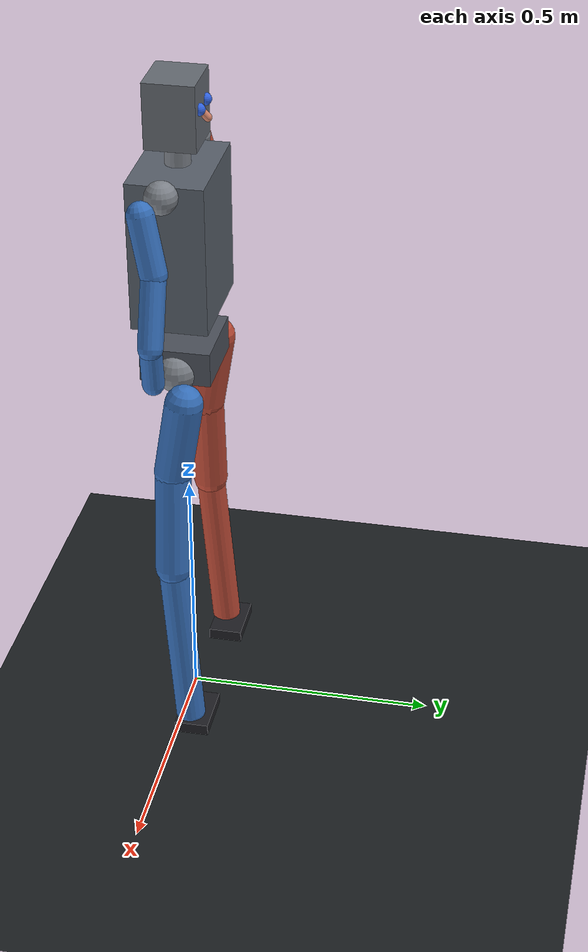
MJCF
<?xml version="1.0"?>
<mujoco model="angad_humanoid">

  <!-- ═══════════════ COMPILER ═══════════════ -->
  <compiler angle="radian" eulerseq="XYZ"/>

  <!-- ═══════════════ OPTIONS ═══════════════ -->
  <option timestep="0.002" gravity="0 0 -9.81"/>

  <!-- ═══════════════ DEFAULTS ═══════════════ -->
  <default>
    <joint damping="20.0" armature="0.1" limited="true"/>
    <geom condim="3" contype="1" conaffinity="1" friction="1.0 0.005 0.001"/>
    <position kp="1000" forcerange="-1000 1000" ctrllimited="true"/>
  </default>

  <!-- ═══════════════ VISUAL ═══════════════ -->
  <visual>
    <headlight ambient="0.25 0.25 0.28" diffuse="0.6 0.6 0.6" specular="0.3 0.3 0.3"/>
    <rgba haze="0.15 0.2 0.33 1"/>
    <global offwidth="1920" offheight="1080"/>
  </visual>

  <!-- ═══════════════ ASSETS ═══════════════ -->
  <asset>
    <texture type="2d" name="floor_tex" builtin="checker"
             rgb1="0.08 0.09 0.10" rgb2="0.14 0.15 0.16"
             width="512" height="512"/>
    <material name="floor_mat" texture="floor_tex" texrepeat="10 10"
              texuniform="true" reflectance="0.15"/>

    <!-- Robot materials -->
    <material name="pelvis_mat"  rgba="0.30 0.32 0.36 1" specular="0.6" shininess="0.4"/>
    <material name="torso_mat"   rgba="0.35 0.38 0.42 1" specular="0.6" shininess="0.4"/>
    <material name="left_mat"    rgba="0.22 0.45 0.75 1" specular="0.5" shininess="0.3"/>
    <material name="right_mat"   rgba="0.75 0.30 0.22 1" specular="0.5" shininess="0.3"/>
    <material name="joint_mat"   rgba="0.50 0.52 0.55 1" specular="0.7" shininess="0.6"/>
    <material name="foot_mat"    rgba="0.12 0.12 0.14 1" specular="0.4" shininess="0.2"/>
    <material name="head_mat"    rgba="0.40 0.42 0.45 1" specular="0.6" shininess="0.5"/>
  </asset>

  <!-- ═══════════════ WORLD ═══════════════ -->
  <worldbody>

    <!-- Ground plane -->
    <geom name="floor" type="plane" size="5 5 0.02" material="floor_mat"/>

    <!-- Lighting -->
    <light name="top" pos="0 0 4" dir="0 0 -1" directional="true"
           castshadow="true" diffuse="0.5 0.5 0.5" specular="0.2 0.2 0.2"/>
    <light name="front_right" pos="2 -2 3" dir="-0.4 0.4 -0.7"
           diffuse="0.35 0.35 0.35" specular="0.15 0.15 0.15"/>
    <light name="front_left" pos="-2 -2 3" dir="0.4 0.4 -0.7"
           diffuse="0.2 0.2 0.2"/>

    <body name="base_link" pos="0 0 0">
      <!-- Support mechanism to prevent falling over:
           Allows X, Y, Z translation and Yaw rotation, but prevents Pitch/Roll. -->
      <joint name="root_x" type="slide" axis="1 0 0" limited="false"/>
      <joint name="root_y" type="slide" axis="0 1 0" limited="false"/>
      <joint name="root_z" type="slide" axis="0 0 1" limited="false"/>
      <joint name="root_yaw" type="hinge" axis="0 0 1" limited="false"/>

      <!-- Pelvis visual (centered between hip joints) -->
      <geom name="pelvis" type="box" size="0.08 0.07 0.035"
            pos="0 0 0.82" material="pelvis_mat" mass="5.565"/>

      <!-- ══════════════════════════════════════════
           LEFT LEG
           Chain: hip → thigh_roll → thigh_yaw → knee → ankle → foot
           ══════════════════════════════════════════ -->
      <body name="hip_L_1" pos="0.06406 0 0.80394">
        <joint name="hip_pitch_l" type="hinge"
               axis="-0.939693 0 0.34202" range="-1.57 1.57" damping="8.0"/>
        <geom name="hip_l" type="sphere" size="0.042"
              material="joint_mat" mass="1.008"/>

        <body name="thigh_L_1" pos="0.07423 0.0315 -0.027037">
          <joint name="thigh_roll_l" type="hinge"
                 axis="0 1 0" range="-0.5 0.5"/>
          <geom name="thigh_l" type="capsule"
                fromto="0 0 0  0.000005 -0.026332 -0.156586"
                size="0.038" material="left_mat" mass="1.319"/>

          <body name="upper_knee_L_1" pos="0.000005 -0.026332 -0.156586">
            <joint name="thigh_yaw_l" type="hinge"
                   axis="0 0 -1" range="-0.5 0.5"/>
            <geom name="upper_knee_l" type="capsule"
                  fromto="0 0 0  0.027 -0.000135 -0.2097"
                  size="0.036" material="left_mat" mass="2.264"/>

            <body name="lower_knee_L_1" pos="0.027 -0.000135 -0.2097">
              <joint name="knee_pitch_l" type="hinge"
                     axis="1 0 0" range="-2.0 2.0" damping="8.0"/>
              <geom name="shin_l" type="capsule"
                    fromto="0 0 0  0.004026 0.025698 -0.362979"
                    size="0.030" material="left_mat" mass="1.446"/>

              <body name="ankle_L_1" pos="0.004026 0.025698 -0.362979">
                <joint name="ankle_pitch_l" type="hinge"
                       axis="1 0 0" range="-1.0 1.0"/>
                <geom name="ankle_l" type="sphere" size="0.024"
                      material="joint_mat" mass="0.108"/>

                <body name="feet_L_1" pos="-0.027965 0.038725 0.000137">
                  <joint name="ankle_roll_l" type="hinge"
                         axis="0 -1 0" range="-0.5 0.5"/>
                  <geom name="foot_l" type="box"
                        size="0.055 0.035 0.012"
                        pos="0.01 -0.03 -0.015"
                        material="foot_mat" mass="0.365"/>
                </body>
              </body>
            </body>
          </body>
        </body>
      </body>

      <!-- ══════════════════════════════════════════
           RIGHT LEG
           ══════════════════════════════════════════ -->
      <body name="hip_R_1" pos="-0.06406 0 0.80394">
        <joint name="hip_pitch_r" type="hinge"
               axis="0.939693 0 0.34202" range="-1.57 1.57" damping="8.0"/>
        <geom name="hip_r" type="sphere" size="0.042"
              material="joint_mat" mass="1.008"/>

        <body name="thigh_R_1" pos="-0.074203 0.0315 -0.02711">
          <joint name="thigh_roll_r" type="hinge"
                 axis="0 1 0" range="-0.5 0.5"/>
          <geom name="thigh_r" type="capsule"
                fromto="0 0 0  -0.003714 -0.026692 -0.156481"
                size="0.038" material="right_mat" mass="1.319"/>

          <body name="upper_knee_R_1" pos="-0.003714 -0.026692 -0.156481">
            <joint name="thigh_yaw_r" type="hinge"
                   axis="0 0 -1" range="-0.5 0.5"/>
            <geom name="upper_knee_r" type="capsule"
                  fromto="0 0 0  -0.03029 -0.003264 -0.209036"
                  size="0.036" material="right_mat" mass="2.264"/>

            <body name="lower_knee_R_1" pos="-0.03029 -0.003264 -0.209036">
              <joint name="knee_pitch_r" type="hinge"
                     axis="1 0 0" range="-2.0 2.0" damping="8.0"/>
              <geom name="shin_r" type="capsule"
                    fromto="0 0 0  -0.015197 0.0239 -0.362807"
                    size="0.030" material="right_mat" mass="1.446"/>

              <body name="ankle_R_1" pos="-0.015197 0.0239 -0.362807">
                <joint name="ankle_pitch_r" type="hinge"
                       axis="1 0 0" range="-1.0 1.0"/>
                <geom name="ankle_r" type="sphere" size="0.024"
                      material="joint_mat" mass="0.108"/>

                <body name="feet_R_1" pos="0.023748 0.04172 -0.000679">
                  <joint name="ankle_roll_r" type="hinge"
                         axis="0 -1 0" range="-0.5 0.5"/>
                  <geom name="foot_r" type="box"
                        size="0.055 0.035 0.012"
                        pos="-0.01 -0.03 -0.015"
                        material="foot_mat" mass="0.365"/>
                </body>
              </body>
            </body>
          </body>
        </body>
      </body>

      <!-- ══════════════════════════════════════════
           TORSO (3-DOF: pitch → roll → yaw)
           ══════════════════════════════════════════ -->
      <body name="torso_pitch_link" pos="0 0 0.883471">
        <joint name="torso_pitch" type="hinge"
               axis="0 1 0" range="-1.57 1.57" damping="6.0"/>
        <inertial pos="0 0 0" mass="0.01"
                  diaginertia="0.0001 0.0001 0.0001"/>

        <body name="torso_roll_link" pos="0 0 0">
          <joint name="torso_roll" type="hinge"
                 axis="1 0 0" range="-1.57 1.57" damping="6.0"/>
          <inertial pos="0 0 0" mass="0.01"
                    diaginertia="0.0001 0.0001 0.0001"/>

          <body name="Torso_1" pos="0 0 0">
            <joint name="torso_yaw" type="hinge"
                   axis="0 0 1" range="-1.57 1.57" damping="6.0"/>
            <!-- Chest -->
            <geom name="chest" type="box" size="0.11 0.075 0.15"
                  pos="0 0 0.18" material="torso_mat" mass="4.0"/>
            <!-- Neck + Head (2-DOF: pitch → yaw) -->
            <geom name="neck" type="capsule" fromto="0 0 0.33 0 0 0.38"
                  size="0.025" material="joint_mat" mass="0.2"/>

            <body name="head_link" pos="0 0 0.38">
              <inertial pos="0 0 0.03" mass="0.1"
                        diaginertia="0.0001 0.0001 0.0001"/>
              <joint name="neck_pitch" type="hinge"
                     axis="0 1 0" range="-0.7 0.7" damping="2.0"/>

              <body name="head_yaw_link" pos="0 0 0">
                <joint name="neck_yaw" type="hinge"
                       axis="0 0 1" range="-1.2 1.2" damping="2.0"/>
                <!-- Head: box shape so rotation is visible -->
                <geom name="head" type="box" size="0.055 0.05 0.065"
                      pos="0 0 0.06" material="head_mat" mass="0.329"
                      contype="0" conaffinity="0"/>
                <!-- Eyes (blue spheres — show yaw direction) -->
                <geom name="eye_l" type="sphere" size="0.012"
                      pos="0.025 0.05 0.07" rgba="0.2 0.4 0.9 1"
                      contype="0" conaffinity="0" mass="0.001"/>
                <geom name="eye_r" type="sphere" size="0.012"
                      pos="-0.025 0.05 0.07" rgba="0.2 0.4 0.9 1"
                      contype="0" conaffinity="0" mass="0.001"/>
                <!-- Nose (small capsule — shows pitch direction) -->
                <geom name="nose" type="capsule" size="0.008"
                      fromto="0 0.05 0.055  0 0.06 0.045"
                      rgba="0.8 0.5 0.4 1"
                      contype="0" conaffinity="0" mass="0.001"/>
              </body>
            </body>

            <!-- ════════ LEFT ARM ════════ -->
            <body name="shoulder_pitch_L_1" pos="0.142972 0.003567 0.324503">
              <joint name="shoulder_pitch_l" type="hinge"
                     axis="0.999681 0.025268 0" range="-3.14159 3.14159"
                     damping="3.0"/>
              <geom name="shoulder_l" type="sphere" size="0.032"
                    material="joint_mat" mass="0.929"/>

              <body name="shoulder_roll_L_1" pos="0.075975 -0.017836 0">
                <joint name="shoulder_roll_l" type="hinge"
                       axis="0.025268 -0.999681 0" range="0 2.792527"
                       damping="2.0"/>
                <geom name="upper_arm_l" type="capsule"
                      fromto="0 0 0  0.018194 0.024718 -0.106693"
                      size="0.026" material="left_mat" mass="0.64"/>

                <body name="bicep_L_1" pos="0.018194 0.024718 -0.106693">
                  <joint name="elbow_yaw_l" type="hinge"
                         axis="0.173593 0.004388 -0.984808"
                         range="-3.14159 3.14159" damping="1.5"/>
                  <geom name="bicep_l" type="capsule"
                        fromto="0 0 0  0.04735 0.001308 -0.124669"
                        size="0.024" material="left_mat" mass="0.648"/>

                  <body name="wrist_L_1" pos="0.04735 0.001308 -0.124669">
                    <joint name="elbow_pitch_l" type="hinge"
                           axis="-0.984371 -0.029347 -0.173646"
                           range="-1.57 1.57" damping="1.5"/>
                    <geom name="forearm_l" type="capsule"
                          fromto="0 0 0  -0.01 0 -0.08"
                          size="0.021" material="left_mat" mass="0.37"/>
                  </body>
                </body>
              </body>
            </body>

            <!-- ════════ RIGHT ARM ════════ -->
            <body name="shoulder_pitch_R_1" pos="-0.142971 -0.003614 0.324503">
              <joint name="shoulder_pitch_r" type="hinge"
                     axis="0.999681 0.025268 0" range="-3.14159 3.14159"
                     damping="3.0"/>
              <geom name="shoulder_r" type="sphere" size="0.032"
                    material="joint_mat" mass="0.929"/>

              <body name="shoulder_roll_R_1" pos="-0.074977 -0.021651 0">
                <joint name="shoulder_roll_r" type="hinge"
                       axis="0.025268 -0.999681 0" range="-2.879793 0.174533"
                       damping="2.0"/>
                <geom name="upper_arm_r" type="capsule"
                      fromto="0 0 0  -0.019419 0.023767 -0.106693"
                      size="0.026" material="right_mat" mass="0.64"/>

                <body name="bicep_R_1" pos="-0.019419 0.023767 -0.106693">
                  <joint name="elbow_yaw_r" type="hinge"
                         axis="-0.173593 -0.004388 -0.984808"
                         range="-3.14159 3.14159" damping="1.5"/>
                  <geom name="bicep_r" type="capsule"
                        fromto="0 0 0  -0.047255 -0.002881 -0.124679"
                        size="0.024" material="right_mat" mass="0.648"/>

                  <body name="wrist_R_1" pos="-0.047255 -0.002881 -0.124679">
                    <joint name="elbow_pitch_r" type="hinge"
                           axis="-0.980548 -0.092247 0.173253"
                           range="-1.57 1.57" damping="1.5"/>
                    <geom name="forearm_r" type="capsule"
                          fromto="0 0 0  0.01 0 -0.08"
                          size="0.021" material="right_mat" mass="0.37"/>
                  </body>
                </body>
              </body>
            </body>

          </body>
        </body>
      </body>

    </body>
  </worldbody>

  <!-- ═══════════════ ACTUATORS ═══════════════
       Position actuators (PD control) for all 23 joints.
       ═══════════════════════════════════════════ -->
  <actuator>
    <!-- Root control for walking and preventing falling -->
    <position name="act_root_x" joint="root_x" kp="5000" kv="500" ctrlrange="-100.0 100.0"/>
    <position name="act_root_y" joint="root_y" kp="5000" kv="500" ctrlrange="-10.0 10.0"/>
    <position name="act_root_z" joint="root_z" kp="5000" kv="500" ctrlrange="-10.0 10.0"/>
    <position name="act_root_yaw" joint="root_yaw" kp="5000" kv="500" ctrlrange="-3.14 3.14"/>

    <!-- Leg actuators (high gains for weight bearing) -->
    <position name="act_hip_pitch_l"   joint="hip_pitch_l"   kp="1500" ctrlrange="-1.57 1.57"/>
    <position name="act_hip_pitch_r"   joint="hip_pitch_r"   kp="1500" ctrlrange="-1.57 1.57"/>
    <position name="act_thigh_roll_l"  joint="thigh_roll_l"  kp="1000" ctrlrange="-0.5 0.5"/>
    <position name="act_thigh_roll_r"  joint="thigh_roll_r"  kp="1000" ctrlrange="-0.5 0.5"/>
    <position name="act_thigh_yaw_l"   joint="thigh_yaw_l"   kp="1000" ctrlrange="-0.5 0.5"/>
    <position name="act_thigh_yaw_r"   joint="thigh_yaw_r"   kp="1000" ctrlrange="-0.5 0.5"/>
    <position name="act_knee_pitch_l"  joint="knee_pitch_l"  kp="4000" ctrlrange="-2.0 2.0"/>
    <position name="act_knee_pitch_r"  joint="knee_pitch_r"  kp="4000" ctrlrange="-2.0 2.0"/>
    <position name="act_ankle_pitch_l" joint="ankle_pitch_l" kp="2000" ctrlrange="-1.0 1.0"/>
    <position name="act_ankle_pitch_r" joint="ankle_pitch_r" kp="2000" ctrlrange="-1.0 1.0"/>
    <position name="act_ankle_roll_l"  joint="ankle_roll_l"  kp="1000"  ctrlrange="-0.5 0.5"/>
    <position name="act_ankle_roll_r"  joint="ankle_roll_r"  kp="1000"  ctrlrange="-0.5 0.5"/>

    <!-- Torso actuators -->
    <position name="act_torso_pitch" joint="torso_pitch" kp="3000" ctrlrange="-1.57 1.57"/>
    <position name="act_torso_roll"  joint="torso_roll"  kp="3000" ctrlrange="-1.57 1.57"/>
    <position name="act_torso_yaw"   joint="torso_yaw"   kp="2000" ctrlrange="-1.57 1.57"/>

    <!-- Arm actuators (lower gains — arms are lighter) -->
    <position name="act_shoulder_pitch_l" joint="shoulder_pitch_l" kp="500" ctrlrange="-3.14159 3.14159"/>
    <position name="act_shoulder_roll_l"  joint="shoulder_roll_l"  kp="500" ctrlrange="0 2.792527"/>
    <position name="act_elbow_yaw_l"      joint="elbow_yaw_l"      kp="300" ctrlrange="-3.14159 3.14159"/>
    <position name="act_elbow_pitch_l"    joint="elbow_pitch_l"    kp="300" ctrlrange="-1.57 1.57"/>
    <position name="act_shoulder_pitch_r" joint="shoulder_pitch_r" kp="500" ctrlrange="-3.14159 3.14159"/>
    <position name="act_shoulder_roll_r"  joint="shoulder_roll_r"  kp="500" ctrlrange="-2.879793 0.174533"/>
    <position name="act_elbow_yaw_r"      joint="elbow_yaw_r"      kp="300" ctrlrange="-3.14159 3.14159"/>
    <position name="act_elbow_pitch_r"    joint="elbow_pitch_r"    kp="300" ctrlrange="-1.57 1.57"/>

    <!-- Head actuators -->
    <position name="act_neck_pitch" joint="neck_pitch" kp="300" ctrlrange="-0.7 0.7"/>
    <position name="act_neck_yaw"   joint="neck_yaw"   kp="300" ctrlrange="-1.2 1.2"/>
  </actuator>

</mujoco>
